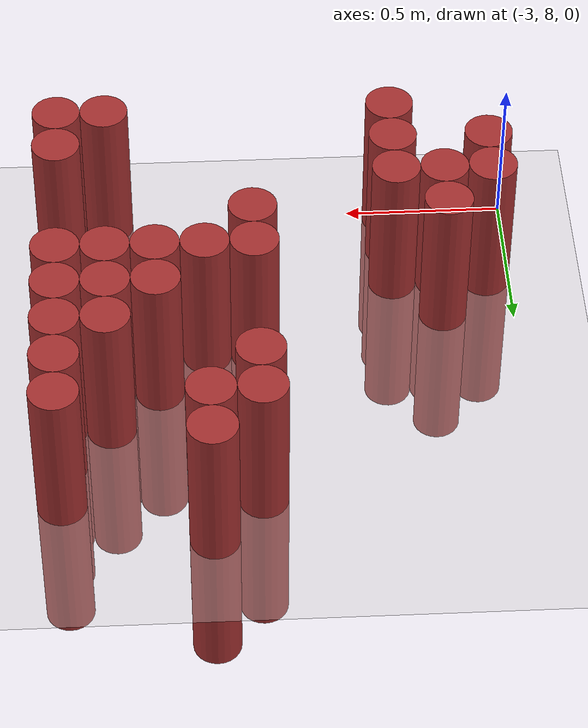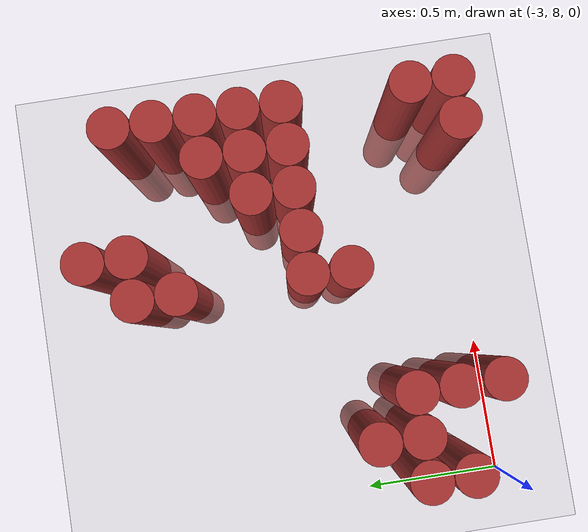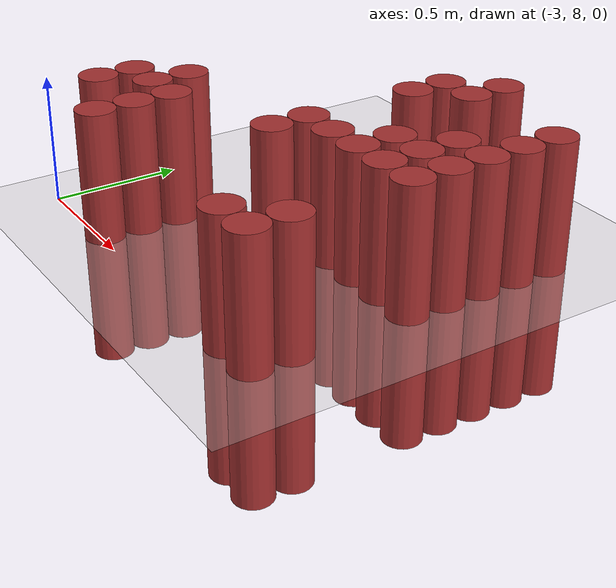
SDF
<sdf version="1.6">
 <world name="world_194">
  <model name="ground_plane">
   <static>1</static>
   <link name="link">
    <collision name="collision">
     <geometry><plane><normal>0 0 1</normal><size>100 100</size></plane></geometry>
     <surface><friction><ode><mu>100</mu><mu2>50</mu2></ode></friction></surface>
    </collision>
    <visual name="visual">
     <cast_shadows>0</cast_shadows>
     <geometry><plane><normal>0 0 1</normal><size>100 100</size></plane></geometry>
     <material>
      <script><uri>file://media/materials/scripts/gazebo.material</uri><name>Gazebo/Grey</name></script>
     </material>
    </visual>
   </link>
  </model>
  <model name="unit_cylinder_188">
   <static>1</static>
   <pose>-2.925000 8.175000 0.000000 0.000000 0.000000 0.000000</pose>
   <link name="link">
    <inertial>
     <mass>1</mass>
     <inertia><ixx>0.145833</ixx><ixy>0</ixy><ixz>0</ixz><iyy>0.145833</iyy><iyz>0</iyz><izz>0.125</izz></inertia>
    </inertial>
    <collision name="collision">
     <geometry><cylinder><radius>0.075000</radius><length>1</length></cylinder></geometry>
    </collision>
    <visual name="visual">
     <geometry><cylinder><radius>0.075000</radius><length>1</length></cylinder></geometry>
     <material>
      <ambient>0.648000 0.192000 0.192000 1</ambient>
      <diffuse>0.648000 0.192000 0.192000 1</diffuse>
     </material>
     <material>
      <script><name>Gazebo/Grey</name><uri>file://media/materials/scripts/gazebo.material</uri></script>
     </material>
    </visual>
   </link>
  </model>
  <model name="unit_cylinder_189">
   <static>1</static>
   <pose>-2.925000 8.325000 0.000000 0.000000 0.000000 0.000000</pose>
   <link name="link">
    <inertial>
     <mass>1</mass>
     <inertia><ixx>0.145833</ixx><ixy>0</ixy><ixz>0</ixz><iyy>0.145833</iyy><iyz>0</iyz><izz>0.125</izz></inertia>
    </inertial>
    <collision name="collision">
     <geometry><cylinder><radius>0.075000</radius><length>1</length></cylinder></geometry>
    </collision>
    <visual name="visual">
     <geometry><cylinder><radius>0.075000</radius><length>1</length></cylinder></geometry>
     <material>
      <ambient>0.648000 0.192000 0.192000 1</ambient>
      <diffuse>0.648000 0.192000 0.192000 1</diffuse>
     </material>
     <material>
      <script><name>Gazebo/Grey</name><uri>file://media/materials/scripts/gazebo.material</uri></script>
     </material>
    </visual>
   </link>
  </model>
  <model name="unit_cylinder_198">
   <static>1</static>
   <pose>-2.775000 8.325000 0.000000 0.000000 0.000000 0.000000</pose>
   <link name="link">
    <inertial>
     <mass>1</mass>
     <inertia><ixx>0.145833</ixx><ixy>0</ixy><ixz>0</ixz><iyy>0.145833</iyy><iyz>0</iyz><izz>0.125</izz></inertia>
    </inertial>
    <collision name="collision">
     <geometry><cylinder><radius>0.075000</radius><length>1</length></cylinder></geometry>
    </collision>
    <visual name="visual">
     <geometry><cylinder><radius>0.075000</radius><length>1</length></cylinder></geometry>
     <material>
      <ambient>0.648000 0.192000 0.192000 1</ambient>
      <diffuse>0.648000 0.192000 0.192000 1</diffuse>
     </material>
     <material>
      <script><name>Gazebo/Grey</name><uri>file://media/materials/scripts/gazebo.material</uri></script>
     </material>
    </visual>
   </link>
  </model>
  <model name="unit_cylinder_199">
   <static>1</static>
   <pose>-2.775000 8.475000 0.000000 0.000000 0.000000 0.000000</pose>
   <link name="link">
    <inertial>
     <mass>1</mass>
     <inertia><ixx>0.145833</ixx><ixy>0</ixy><ixz>0</ixz><iyy>0.145833</iyy><iyz>0</iyz><izz>0.125</izz></inertia>
    </inertial>
    <collision name="collision">
     <geometry><cylinder><radius>0.075000</radius><length>1</length></cylinder></geometry>
    </collision>
    <visual name="visual">
     <geometry><cylinder><radius>0.075000</radius><length>1</length></cylinder></geometry>
     <material>
      <ambient>0.648000 0.192000 0.192000 1</ambient>
      <diffuse>0.648000 0.192000 0.192000 1</diffuse>
     </material>
     <material>
      <script><name>Gazebo/Grey</name><uri>file://media/materials/scripts/gazebo.material</uri></script>
     </material>
    </visual>
   </link>
  </model>
  <model name="unit_cylinder_203">
   <static>1</static>
   <pose>-2.625000 8.025000 0.000000 0.000000 0.000000 0.000000</pose>
   <link name="link">
    <inertial>
     <mass>1</mass>
     <inertia><ixx>0.145833</ixx><ixy>0</ixy><ixz>0</ixz><iyy>0.145833</iyy><iyz>0</iyz><izz>0.125</izz></inertia>
    </inertial>
    <collision name="collision">
     <geometry><cylinder><radius>0.075000</radius><length>1</length></cylinder></geometry>
    </collision>
    <visual name="visual">
     <geometry><cylinder><radius>0.075000</radius><length>1</length></cylinder></geometry>
     <material>
      <ambient>0.648000 0.192000 0.192000 1</ambient>
      <diffuse>0.648000 0.192000 0.192000 1</diffuse>
     </material>
     <material>
      <script><name>Gazebo/Grey</name><uri>file://media/materials/scripts/gazebo.material</uri></script>
     </material>
    </visual>
   </link>
  </model>
  <model name="unit_cylinder_204">
   <static>1</static>
   <pose>-2.625000 8.175000 0.000000 0.000000 0.000000 0.000000</pose>
   <link name="link">
    <inertial>
     <mass>1</mass>
     <inertia><ixx>0.145833</ixx><ixy>0</ixy><ixz>0</ixz><iyy>0.145833</iyy><iyz>0</iyz><izz>0.125</izz></inertia>
    </inertial>
    <collision name="collision">
     <geometry><cylinder><radius>0.075000</radius><length>1</length></cylinder></geometry>
    </collision>
    <visual name="visual">
     <geometry><cylinder><radius>0.075000</radius><length>1</length></cylinder></geometry>
     <material>
      <ambient>0.648000 0.192000 0.192000 1</ambient>
      <diffuse>0.648000 0.192000 0.192000 1</diffuse>
     </material>
     <material>
      <script><name>Gazebo/Grey</name><uri>file://media/materials/scripts/gazebo.material</uri></script>
     </material>
    </visual>
   </link>
  </model>
  <model name="unit_cylinder_205">
   <static>1</static>
   <pose>-2.625000 8.325000 0.000000 0.000000 0.000000 0.000000</pose>
   <link name="link">
    <inertial>
     <mass>1</mass>
     <inertia><ixx>0.145833</ixx><ixy>0</ixy><ixz>0</ixz><iyy>0.145833</iyy><iyz>0</iyz><izz>0.125</izz></inertia>
    </inertial>
    <collision name="collision">
     <geometry><cylinder><radius>0.075000</radius><length>1</length></cylinder></geometry>
    </collision>
    <visual name="visual">
     <geometry><cylinder><radius>0.075000</radius><length>1</length></cylinder></geometry>
     <material>
      <ambient>0.648000 0.192000 0.192000 1</ambient>
      <diffuse>0.648000 0.192000 0.192000 1</diffuse>
     </material>
     <material>
      <script><name>Gazebo/Grey</name><uri>file://media/materials/scripts/gazebo.material</uri></script>
     </material>
    </visual>
   </link>
  </model>
  <model name="unit_cylinder_215">
   <static>1</static>
   <pose>-2.175000 8.475000 0.000000 0.000000 0.000000 0.000000</pose>
   <link name="link">
    <inertial>
     <mass>1</mass>
     <inertia><ixx>0.145833</ixx><ixy>0</ixy><ixz>0</ixz><iyy>0.145833</iyy><iyz>0</iyz><izz>0.125</izz></inertia>
    </inertial>
    <collision name="collision">
     <geometry><cylinder><radius>0.075000</radius><length>1</length></cylinder></geometry>
    </collision>
    <visual name="visual">
     <geometry><cylinder><radius>0.075000</radius><length>1</length></cylinder></geometry>
     <material>
      <ambient>0.648000 0.192000 0.192000 1</ambient>
      <diffuse>0.648000 0.192000 0.192000 1</diffuse>
     </material>
     <material>
      <script><name>Gazebo/Grey</name><uri>file://media/materials/scripts/gazebo.material</uri></script>
     </material>
    </visual>
   </link>
  </model>
  <model name="unit_cylinder_216">
   <static>1</static>
   <pose>-2.175000 8.625000 0.000000 0.000000 0.000000 0.000000</pose>
   <link name="link">
    <inertial>
     <mass>1</mass>
     <inertia><ixx>0.145833</ixx><ixy>0</ixy><ixz>0</ixz><iyy>0.145833</iyy><iyz>0</iyz><izz>0.125</izz></inertia>
    </inertial>
    <collision name="collision">
     <geometry><cylinder><radius>0.075000</radius><length>1</length></cylinder></geometry>
    </collision>
    <visual name="visual">
     <geometry><cylinder><radius>0.075000</radius><length>1</length></cylinder></geometry>
     <material>
      <ambient>0.648000 0.192000 0.192000 1</ambient>
      <diffuse>0.648000 0.192000 0.192000 1</diffuse>
     </material>
     <material>
      <script><name>Gazebo/Grey</name><uri>file://media/materials/scripts/gazebo.material</uri></script>
     </material>
    </visual>
   </link>
  </model>
  <model name="unit_cylinder_217">
   <static>1</static>
   <pose>-2.175000 9.075000 0.000000 0.000000 0.000000 0.000000</pose>
   <link name="link">
    <inertial>
     <mass>1</mass>
     <inertia><ixx>0.145833</ixx><ixy>0</ixy><ixz>0</ixz><iyy>0.145833</iyy><iyz>0</iyz><izz>0.125</izz></inertia>
    </inertial>
    <collision name="collision">
     <geometry><cylinder><radius>0.075000</radius><length>1</length></cylinder></geometry>
    </collision>
    <visual name="visual">
     <geometry><cylinder><radius>0.075000</radius><length>1</length></cylinder></geometry>
     <material>
      <ambient>0.648000 0.192000 0.192000 1</ambient>
      <diffuse>0.648000 0.192000 0.192000 1</diffuse>
     </material>
     <material>
      <script><name>Gazebo/Grey</name><uri>file://media/materials/scripts/gazebo.material</uri></script>
     </material>
    </visual>
   </link>
  </model>
  <model name="unit_cylinder_218">
   <static>1</static>
   <pose>-2.175000 9.225000 0.000000 0.000000 0.000000 0.000000</pose>
   <link name="link">
    <inertial>
     <mass>1</mass>
     <inertia><ixx>0.145833</ixx><ixy>0</ixy><ixz>0</ixz><iyy>0.145833</iyy><iyz>0</iyz><izz>0.125</izz></inertia>
    </inertial>
    <collision name="collision">
     <geometry><cylinder><radius>0.075000</radius><length>1</length></cylinder></geometry>
    </collision>
    <visual name="visual">
     <geometry><cylinder><radius>0.075000</radius><length>1</length></cylinder></geometry>
     <material>
      <ambient>0.648000 0.192000 0.192000 1</ambient>
      <diffuse>0.648000 0.192000 0.192000 1</diffuse>
     </material>
     <material>
      <script><name>Gazebo/Grey</name><uri>file://media/materials/scripts/gazebo.material</uri></script>
     </material>
    </visual>
   </link>
  </model>
  <model name="unit_cylinder_227">
   <static>1</static>
   <pose>-2.025000 8.625000 0.000000 0.000000 0.000000 0.000000</pose>
   <link name="link">
    <inertial>
     <mass>1</mass>
     <inertia><ixx>0.145833</ixx><ixy>0</ixy><ixz>0</ixz><iyy>0.145833</iyy><iyz>0</iyz><izz>0.125</izz></inertia>
    </inertial>
    <collision name="collision">
     <geometry><cylinder><radius>0.075000</radius><length>1</length></cylinder></geometry>
    </collision>
    <visual name="visual">
     <geometry><cylinder><radius>0.075000</radius><length>1</length></cylinder></geometry>
     <material>
      <ambient>0.648000 0.192000 0.192000 1</ambient>
      <diffuse>0.648000 0.192000 0.192000 1</diffuse>
     </material>
     <material>
      <script><name>Gazebo/Grey</name><uri>file://media/materials/scripts/gazebo.material</uri></script>
     </material>
    </visual>
   </link>
  </model>
  <model name="unit_cylinder_228">
   <static>1</static>
   <pose>-2.025000 9.225000 0.000000 0.000000 0.000000 0.000000</pose>
   <link name="link">
    <inertial>
     <mass>1</mass>
     <inertia><ixx>0.145833</ixx><ixy>0</ixy><ixz>0</ixz><iyy>0.145833</iyy><iyz>0</iyz><izz>0.125</izz></inertia>
    </inertial>
    <collision name="collision">
     <geometry><cylinder><radius>0.075000</radius><length>1</length></cylinder></geometry>
    </collision>
    <visual name="visual">
     <geometry><cylinder><radius>0.075000</radius><length>1</length></cylinder></geometry>
     <material>
      <ambient>0.648000 0.192000 0.192000 1</ambient>
      <diffuse>0.648000 0.192000 0.192000 1</diffuse>
     </material>
     <material>
      <script><name>Gazebo/Grey</name><uri>file://media/materials/scripts/gazebo.material</uri></script>
     </material>
    </visual>
   </link>
  </model>
  <model name="unit_cylinder_229">
   <static>1</static>
   <pose>-2.025000 9.375000 0.000000 0.000000 0.000000 0.000000</pose>
   <link name="link">
    <inertial>
     <mass>1</mass>
     <inertia><ixx>0.145833</ixx><ixy>0</ixy><ixz>0</ixz><iyy>0.145833</iyy><iyz>0</iyz><izz>0.125</izz></inertia>
    </inertial>
    <collision name="collision">
     <geometry><cylinder><radius>0.075000</radius><length>1</length></cylinder></geometry>
    </collision>
    <visual name="visual">
     <geometry><cylinder><radius>0.075000</radius><length>1</length></cylinder></geometry>
     <material>
      <ambient>0.648000 0.192000 0.192000 1</ambient>
      <diffuse>0.648000 0.192000 0.192000 1</diffuse>
     </material>
     <material>
      <script><name>Gazebo/Grey</name><uri>file://media/materials/scripts/gazebo.material</uri></script>
     </material>
    </visual>
   </link>
  </model>
  <model name="unit_cylinder_230">
   <static>1</static>
   <pose>-1.875000 8.625000 0.000000 0.000000 0.000000 0.000000</pose>
   <link name="link">
    <inertial>
     <mass>1</mass>
     <inertia><ixx>0.145833</ixx><ixy>0</ixy><ixz>0</ixz><iyy>0.145833</iyy><iyz>0</iyz><izz>0.125</izz></inertia>
    </inertial>
    <collision name="collision">
     <geometry><cylinder><radius>0.075000</radius><length>1</length></cylinder></geometry>
    </collision>
    <visual name="visual">
     <geometry><cylinder><radius>0.075000</radius><length>1</length></cylinder></geometry>
     <material>
      <ambient>0.648000 0.192000 0.192000 1</ambient>
      <diffuse>0.648000 0.192000 0.192000 1</diffuse>
     </material>
     <material>
      <script><name>Gazebo/Grey</name><uri>file://media/materials/scripts/gazebo.material</uri></script>
     </material>
    </visual>
   </link>
  </model>
  <model name="unit_cylinder_231">
   <static>1</static>
   <pose>-1.875000 8.775000 0.000000 0.000000 0.000000 0.000000</pose>
   <link name="link">
    <inertial>
     <mass>1</mass>
     <inertia><ixx>0.145833</ixx><ixy>0</ixy><ixz>0</ixz><iyy>0.145833</iyy><iyz>0</iyz><izz>0.125</izz></inertia>
    </inertial>
    <collision name="collision">
     <geometry><cylinder><radius>0.075000</radius><length>1</length></cylinder></geometry>
    </collision>
    <visual name="visual">
     <geometry><cylinder><radius>0.075000</radius><length>1</length></cylinder></geometry>
     <material>
      <ambient>0.648000 0.192000 0.192000 1</ambient>
      <diffuse>0.648000 0.192000 0.192000 1</diffuse>
     </material>
     <material>
      <script><name>Gazebo/Grey</name><uri>file://media/materials/scripts/gazebo.material</uri></script>
     </material>
    </visual>
   </link>
  </model>
  <model name="unit_cylinder_232">
   <static>1</static>
   <pose>-1.725000 8.025000 0.000000 0.000000 0.000000 0.000000</pose>
   <link name="link">
    <inertial>
     <mass>1</mass>
     <inertia><ixx>0.145833</ixx><ixy>0</ixy><ixz>0</ixz><iyy>0.145833</iyy><iyz>0</iyz><izz>0.125</izz></inertia>
    </inertial>
    <collision name="collision">
     <geometry><cylinder><radius>0.075000</radius><length>1</length></cylinder></geometry>
    </collision>
    <visual name="visual">
     <geometry><cylinder><radius>0.075000</radius><length>1</length></cylinder></geometry>
     <material>
      <ambient>0.648000 0.192000 0.192000 1</ambient>
      <diffuse>0.648000 0.192000 0.192000 1</diffuse>
     </material>
     <material>
      <script><name>Gazebo/Grey</name><uri>file://media/materials/scripts/gazebo.material</uri></script>
     </material>
    </visual>
   </link>
  </model>
  <model name="unit_cylinder_233">
   <static>1</static>
   <pose>-1.725000 8.625000 0.000000 0.000000 0.000000 0.000000</pose>
   <link name="link">
    <inertial>
     <mass>1</mass>
     <inertia><ixx>0.145833</ixx><ixy>0</ixy><ixz>0</ixz><iyy>0.145833</iyy><iyz>0</iyz><izz>0.125</izz></inertia>
    </inertial>
    <collision name="collision">
     <geometry><cylinder><radius>0.075000</radius><length>1</length></cylinder></geometry>
    </collision>
    <visual name="visual">
     <geometry><cylinder><radius>0.075000</radius><length>1</length></cylinder></geometry>
     <material>
      <ambient>0.648000 0.192000 0.192000 1</ambient>
      <diffuse>0.648000 0.192000 0.192000 1</diffuse>
     </material>
     <material>
      <script><name>Gazebo/Grey</name><uri>file://media/materials/scripts/gazebo.material</uri></script>
     </material>
    </visual>
   </link>
  </model>
  <model name="unit_cylinder_234">
   <static>1</static>
   <pose>-1.725000 8.775000 0.000000 0.000000 0.000000 0.000000</pose>
   <link name="link">
    <inertial>
     <mass>1</mass>
     <inertia><ixx>0.145833</ixx><ixy>0</ixy><ixz>0</ixz><iyy>0.145833</iyy><iyz>0</iyz><izz>0.125</izz></inertia>
    </inertial>
    <collision name="collision">
     <geometry><cylinder><radius>0.075000</radius><length>1</length></cylinder></geometry>
    </collision>
    <visual name="visual">
     <geometry><cylinder><radius>0.075000</radius><length>1</length></cylinder></geometry>
     <material>
      <ambient>0.648000 0.192000 0.192000 1</ambient>
      <diffuse>0.648000 0.192000 0.192000 1</diffuse>
     </material>
     <material>
      <script><name>Gazebo/Grey</name><uri>file://media/materials/scripts/gazebo.material</uri></script>
     </material>
    </visual>
   </link>
  </model>
  <model name="unit_cylinder_235">
   <static>1</static>
   <pose>-1.725000 8.925000 0.000000 0.000000 0.000000 0.000000</pose>
   <link name="link">
    <inertial>
     <mass>1</mass>
     <inertia><ixx>0.145833</ixx><ixy>0</ixy><ixz>0</ixz><iyy>0.145833</iyy><iyz>0</iyz><izz>0.125</izz></inertia>
    </inertial>
    <collision name="collision">
     <geometry><cylinder><radius>0.075000</radius><length>1</length></cylinder></geometry>
    </collision>
    <visual name="visual">
     <geometry><cylinder><radius>0.075000</radius><length>1</length></cylinder></geometry>
     <material>
      <ambient>0.648000 0.192000 0.192000 1</ambient>
      <diffuse>0.648000 0.192000 0.192000 1</diffuse>
     </material>
     <material>
      <script><name>Gazebo/Grey</name><uri>file://media/materials/scripts/gazebo.material</uri></script>
     </material>
    </visual>
   </link>
  </model>
  <model name="unit_cylinder_238">
   <static>1</static>
   <pose>-1.575000 8.025000 0.000000 0.000000 0.000000 0.000000</pose>
   <link name="link">
    <inertial>
     <mass>1</mass>
     <inertia><ixx>0.145833</ixx><ixy>0</ixy><ixz>0</ixz><iyy>0.145833</iyy><iyz>0</iyz><izz>0.125</izz></inertia>
    </inertial>
    <collision name="collision">
     <geometry><cylinder><radius>0.075000</radius><length>1</length></cylinder></geometry>
    </collision>
    <visual name="visual">
     <geometry><cylinder><radius>0.075000</radius><length>1</length></cylinder></geometry>
     <material>
      <ambient>0.648000 0.192000 0.192000 1</ambient>
      <diffuse>0.648000 0.192000 0.192000 1</diffuse>
     </material>
     <material>
      <script><name>Gazebo/Grey</name><uri>file://media/materials/scripts/gazebo.material</uri></script>
     </material>
    </visual>
   </link>
  </model>
  <model name="unit_cylinder_239">
   <static>1</static>
   <pose>-1.575000 8.175000 0.000000 0.000000 0.000000 0.000000</pose>
   <link name="link">
    <inertial>
     <mass>1</mass>
     <inertia><ixx>0.145833</ixx><ixy>0</ixy><ixz>0</ixz><iyy>0.145833</iyy><iyz>0</iyz><izz>0.125</izz></inertia>
    </inertial>
    <collision name="collision">
     <geometry><cylinder><radius>0.075000</radius><length>1</length></cylinder></geometry>
    </collision>
    <visual name="visual">
     <geometry><cylinder><radius>0.075000</radius><length>1</length></cylinder></geometry>
     <material>
      <ambient>0.648000 0.192000 0.192000 1</ambient>
      <diffuse>0.648000 0.192000 0.192000 1</diffuse>
     </material>
     <material>
      <script><name>Gazebo/Grey</name><uri>file://media/materials/scripts/gazebo.material</uri></script>
     </material>
    </visual>
   </link>
  </model>
  <model name="unit_cylinder_240">
   <static>1</static>
   <pose>-1.575000 8.625000 0.000000 0.000000 0.000000 0.000000</pose>
   <link name="link">
    <inertial>
     <mass>1</mass>
     <inertia><ixx>0.145833</ixx><ixy>0</ixy><ixz>0</ixz><iyy>0.145833</iyy><iyz>0</iyz><izz>0.125</izz></inertia>
    </inertial>
    <collision name="collision">
     <geometry><cylinder><radius>0.075000</radius><length>1</length></cylinder></geometry>
    </collision>
    <visual name="visual">
     <geometry><cylinder><radius>0.075000</radius><length>1</length></cylinder></geometry>
     <material>
      <ambient>0.648000 0.192000 0.192000 1</ambient>
      <diffuse>0.648000 0.192000 0.192000 1</diffuse>
     </material>
     <material>
      <script><name>Gazebo/Grey</name><uri>file://media/materials/scripts/gazebo.material</uri></script>
     </material>
    </visual>
   </link>
  </model>
  <model name="unit_cylinder_241">
   <static>1</static>
   <pose>-1.575000 8.775000 0.000000 0.000000 0.000000 0.000000</pose>
   <link name="link">
    <inertial>
     <mass>1</mass>
     <inertia><ixx>0.145833</ixx><ixy>0</ixy><ixz>0</ixz><iyy>0.145833</iyy><iyz>0</iyz><izz>0.125</izz></inertia>
    </inertial>
    <collision name="collision">
     <geometry><cylinder><radius>0.075000</radius><length>1</length></cylinder></geometry>
    </collision>
    <visual name="visual">
     <geometry><cylinder><radius>0.075000</radius><length>1</length></cylinder></geometry>
     <material>
      <ambient>0.648000 0.192000 0.192000 1</ambient>
      <diffuse>0.648000 0.192000 0.192000 1</diffuse>
     </material>
     <material>
      <script><name>Gazebo/Grey</name><uri>file://media/materials/scripts/gazebo.material</uri></script>
     </material>
    </visual>
   </link>
  </model>
  <model name="unit_cylinder_242">
   <static>1</static>
   <pose>-1.575000 8.925000 0.000000 0.000000 0.000000 0.000000</pose>
   <link name="link">
    <inertial>
     <mass>1</mass>
     <inertia><ixx>0.145833</ixx><ixy>0</ixy><ixz>0</ixz><iyy>0.145833</iyy><iyz>0</iyz><izz>0.125</izz></inertia>
    </inertial>
    <collision name="collision">
     <geometry><cylinder><radius>0.075000</radius><length>1</length></cylinder></geometry>
    </collision>
    <visual name="visual">
     <geometry><cylinder><radius>0.075000</radius><length>1</length></cylinder></geometry>
     <material>
      <ambient>0.648000 0.192000 0.192000 1</ambient>
      <diffuse>0.648000 0.192000 0.192000 1</diffuse>
     </material>
     <material>
      <script><name>Gazebo/Grey</name><uri>file://media/materials/scripts/gazebo.material</uri></script>
     </material>
    </visual>
   </link>
  </model>
  <model name="unit_cylinder_243">
   <static>1</static>
   <pose>-1.575000 9.075000 0.000000 0.000000 0.000000 0.000000</pose>
   <link name="link">
    <inertial>
     <mass>1</mass>
     <inertia><ixx>0.145833</ixx><ixy>0</ixy><ixz>0</ixz><iyy>0.145833</iyy><iyz>0</iyz><izz>0.125</izz></inertia>
    </inertial>
    <collision name="collision">
     <geometry><cylinder><radius>0.075000</radius><length>1</length></cylinder></geometry>
    </collision>
    <visual name="visual">
     <geometry><cylinder><radius>0.075000</radius><length>1</length></cylinder></geometry>
     <material>
      <ambient>0.648000 0.192000 0.192000 1</ambient>
      <diffuse>0.648000 0.192000 0.192000 1</diffuse>
     </material>
     <material>
      <script><name>Gazebo/Grey</name><uri>file://media/materials/scripts/gazebo.material</uri></script>
     </material>
    </visual>
   </link>
  </model>
  <model name="unit_cylinder_244">
   <static>1</static>
   <pose>-1.575000 9.225000 0.000000 0.000000 0.000000 0.000000</pose>
   <link name="link">
    <inertial>
     <mass>1</mass>
     <inertia><ixx>0.145833</ixx><ixy>0</ixy><ixz>0</ixz><iyy>0.145833</iyy><iyz>0</iyz><izz>0.125</izz></inertia>
    </inertial>
    <collision name="collision">
     <geometry><cylinder><radius>0.075000</radius><length>1</length></cylinder></geometry>
    </collision>
    <visual name="visual">
     <geometry><cylinder><radius>0.075000</radius><length>1</length></cylinder></geometry>
     <material>
      <ambient>0.648000 0.192000 0.192000 1</ambient>
      <diffuse>0.648000 0.192000 0.192000 1</diffuse>
     </material>
     <material>
      <script><name>Gazebo/Grey</name><uri>file://media/materials/scripts/gazebo.material</uri></script>
     </material>
    </visual>
   </link>
  </model>
 </world>
</sdf>
